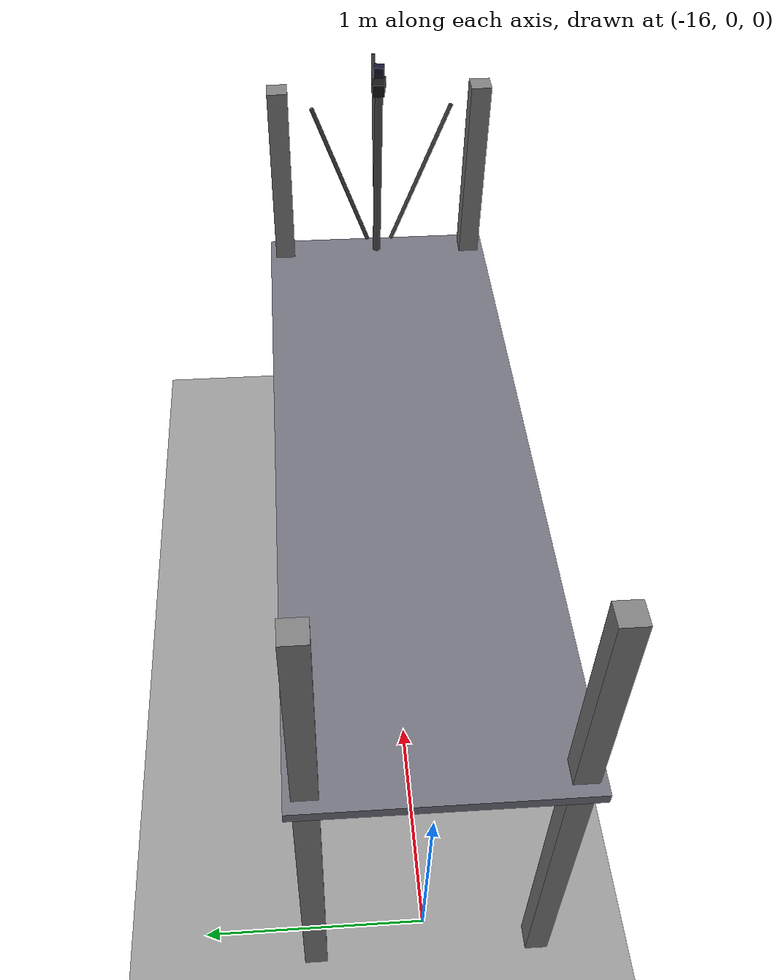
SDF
<sdf version="1.7">
 <world name="rmuc2026_radar_sim">
  <plugin filename="libignition-gazebo-physics-system.so" name="ignition::gazebo::systems::Physics"/>
  <plugin filename="libignition-gazebo-scene-broadcaster-system.so" name="ignition::gazebo::systems::SceneBroadcaster"/>
  <plugin filename="libignition-gazebo-user-commands-system.so" name="ignition::gazebo::systems::UserCommands"/>
  <plugin filename="libignition-gazebo-sensors-system.so" name="ignition::gazebo::systems::Sensors">
   <render_engine>ogre2</render_engine>
  </plugin>
  <plugin filename="libignition-gazebo-imu-system.so" name="ignition::gazebo::systems::Imu"/>
  <plugin filename="libignition-gazebo-contact-system.so" name="ignition::gazebo::systems::Contact"/>
  <physics name="default_physics" type="ode">
   <max_step_size>0.004</max_step_size>
   <real_time_factor>1.0</real_time_factor>
   <real_time_update_rate>250</real_time_update_rate>
  </physics>
  <scene><ambient>0.6 0.6 0.6 1</ambient><background>0.7 0.8 0.95 1</background><shadows>true</shadows></scene>
  <light type="directional" name="sun">
   <pose>0 0 30 0 0 0</pose>
   <diffuse>0.9 0.9 0.9 1</diffuse>
   <specular>0.3 0.3 0.3 1</specular>
   <attenuation>
    <range>1000</range>
    <constant>0.3</constant>
    <linear>0.005</linear>
    <quadratic>0.0001</quadratic>
   </attenuation>
   <direction>-0.5 0.3 -0.9</direction>
  </light>
  <light type="directional" name="fill_light">
   <cast_shadows>false</cast_shadows>
   <pose>0 0 25 0 0 0</pose>
   <diffuse>0.4 0.4 0.4 1</diffuse>
   <specular>0.1 0.1 0.1 1</specular>
   <direction>0.5 -0.3 -0.7</direction>
  </light>
  <model name="ground_plane">
   <static>true</static>
   <link name="link">
    <collision name="collision"><geometry><plane><normal>0 0 1</normal></plane></geometry></collision>
    <visual name="visual">
     <geometry><plane><normal>0 0 1</normal><size>40 25</size></plane></geometry>
     <material><ambient>0.55 0.55 0.55 1</ambient><diffuse>0.6 0.6 0.6 1</diffuse></material>
    </visual>
   </link>
  </model>
  <include><uri>model://radar_station</uri><pose>-14.5 0 0 0 0 0</pose><name>radar_station_blue</name></include>
 </world>
</sdf>

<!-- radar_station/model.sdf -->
<sdf version="1.7">
  <model name="radar_station">
    <static>true</static>

    <!-- ===== 雷达基座平台 (3.4m x 1.16m, 高2.5m) ===== -->
    <link name="base_link">
      <pose>0 0 0 0 0 0</pose>
    </link>

    <!-- 支撑柱 (4根) -->
    <link name="pillar_fl">
      <pose>1.6 0.5 1.25 0 0 0</pose>
      <visual name="v"><geometry><box><size>0.1 0.1 2.5</size></box></geometry>
        <material><ambient>0.4 0.4 0.4 1</ambient><diffuse>0.5 0.5 0.5 1</diffuse></material></visual>
      <collision name="c"><geometry><box><size>0.1 0.1 2.5</size></box></geometry></collision>
    </link>
    <joint name="j_pfl" type="fixed"><parent>base_link</parent><child>pillar_fl</child></joint>

    <link name="pillar_fr">
      <pose>1.6 -0.5 1.25 0 0 0</pose>
      <visual name="v"><geometry><box><size>0.1 0.1 2.5</size></box></geometry>
        <material><ambient>0.4 0.4 0.4 1</ambient><diffuse>0.5 0.5 0.5 1</diffuse></material></visual>
      <collision name="c"><geometry><box><size>0.1 0.1 2.5</size></box></geometry></collision>
    </link>
    <joint name="j_pfr" type="fixed"><parent>base_link</parent><child>pillar_fr</child></joint>

    <link name="pillar_bl">
      <pose>-1.6 0.5 1.25 0 0 0</pose>
      <visual name="v"><geometry><box><size>0.1 0.1 2.5</size></box></geometry>
        <material><ambient>0.4 0.4 0.4 1</ambient><diffuse>0.5 0.5 0.5 1</diffuse></material></visual>
      <collision name="c"><geometry><box><size>0.1 0.1 2.5</size></box></geometry></collision>
    </link>
    <joint name="j_pbl" type="fixed"><parent>base_link</parent><child>pillar_bl</child></joint>

    <link name="pillar_br">
      <pose>-1.6 -0.5 1.25 0 0 0</pose>
      <visual name="v"><geometry><box><size>0.1 0.1 2.5</size></box></geometry>
        <material><ambient>0.4 0.4 0.4 1</ambient><diffuse>0.5 0.5 0.5 1</diffuse></material></visual>
      <collision name="c"><geometry><box><size>0.1 0.1 2.5</size></box></geometry></collision>
    </link>
    <joint name="j_pbr" type="fixed"><parent>base_link</parent><child>pillar_br</child></joint>

    <!-- 平台面板 3.4m x 1.16m x 0.05m, 高度1.5m -->
    <link name="platform">
      <pose>0 0 1.525 0 0 0</pose>
      <visual name="v">
        <geometry><box><size>3.4 1.16 0.05</size></box></geometry>
        <material><ambient>0.35 0.35 0.4 1</ambient><diffuse>0.45 0.45 0.5 1</diffuse></material>
      </visual>
      <collision name="c"><geometry><box><size>3.4 1.16 0.05</size></box></geometry></collision>
    </link>
    <joint name="j_platform" type="fixed"><parent>base_link</parent><child>platform</child></joint>

    <!-- 围栏已按用户请求移除：不再在基座上生成挡视线的围栏 -->

    <!-- ===== 三脚架 (移动到平台前边缘) ===== -->
    <!-- 三脚架中心高约1.0m, 平台顶面在1.55m, 三脚架顶在2.5m -->
    <!-- 移动到平台前边缘(X=1.6)，避免平台遮挡 -->
    <link name="tripod_center">
      <pose>1.6 0 2.0 0 0 0</pose>
      <visual name="v">
        <geometry><cylinder><radius>0.02</radius><length>1.0</length></cylinder></geometry>
        <material><ambient>0.2 0.2 0.2 1</ambient><diffuse>0.3 0.3 0.3 1</diffuse></material>
      </visual>
    </link>
    <joint name="j_tripod" type="fixed"><parent>platform</parent><child>tripod_center</child></joint>

    <link name="tripod_leg1">
      <pose>1.85 0 2.1 0 0.35 0</pose>
      <visual name="v"><geometry><cylinder><radius>0.01</radius><length>0.8</length></cylinder></geometry>
        <material><ambient>0.2 0.2 0.2 1</ambient><diffuse>0.3 0.3 0.3 1</diffuse></material></visual>
    </link>
    <joint name="j_tl1" type="fixed"><parent>tripod_center</parent><child>tripod_leg1</child></joint>

    <link name="tripod_leg2">
      <pose>1.45 0.2 2.1 -0.35 0 0</pose>
      <visual name="v"><geometry><cylinder><radius>0.01</radius><length>0.8</length></cylinder></geometry>
        <material><ambient>0.2 0.2 0.2 1</ambient><diffuse>0.3 0.3 0.3 1</diffuse></material></visual>
    </link>
    <joint name="j_tl2" type="fixed"><parent>tripod_center</parent><child>tripod_leg2</child></joint>

    <link name="tripod_leg3">
      <pose>1.45 -0.2 2.1 0.35 0 0</pose>
      <visual name="v"><geometry><cylinder><radius>0.01</radius><length>0.8</length></cylinder></geometry>
        <material><ambient>0.2 0.2 0.2 1</ambient><diffuse>0.3 0.3 0.3 1</diffuse></material></visual>
    </link>
    <joint name="j_tl3" type="fixed"><parent>tripod_center</parent><child>tripod_leg3</child></joint>

    <!-- Livox HAP 激光雷达 (三脚架顶部)               -->
    <!-- 高度: 2.5m (距离地面)                        -->
    <!-- pitch=0rad(0°) 水平放置                      -->
    <!-- yaw=-0.262rad(15°) 向右旋转                   -->
    <!-- 位置移动到平台前边缘，避免遮挡                 -->
    <link name="livox_hap">
      <pose>1.6 0 2.5 0 0 -0.150</pose>
      <visual name="lidar_body">
        <geometry><box><size>0.1 0.06 0.06</size></box></geometry>
        <material><ambient>0.05 0.05 0.05 1</ambient><diffuse>0.1 0.1 0.1 1</diffuse></material>
      </visual>
      <collision name="c"><geometry><box><size>0.1 0.06 0.06</size></box></geometry></collision>

      <sensor name="livox_hap_lidar" type="gpu_lidar">
        <pose>0 0 0 0 0 0</pose>
        <always_on>true</always_on>
        <update_rate>10</update_rate>
        <topic>livox/lidar</topic>
        <visualize>true</visualize>
        <lidar>
          <scan>
            <horizontal>
              <samples>600</samples>
              <resolution>1</resolution>
              <min_angle>-1.0472</min_angle>
              <max_angle>1.0472</max_angle>
            </horizontal>
            <vertical>
              <!-- 增加垂直扫描角度从25°到45°，以获得更好的赛场覆盖 -->
              <samples>64</samples>
              <resolution>1</resolution>
              <min_angle>-0.3927</min_angle>
              <max_angle>0.3927</max_angle>
            </vertical>
          </scan>
          <range>
            <min>0.2</min>
            <max>150.0</max>
            <resolution>0.002</resolution>
          </range>
          <noise>
            <type>gaussian</type>
            <mean>0.0</mean>
            <stddev>0.01</stddev>
          </noise>
        </lidar>
      </sensor>
    </link>
    <joint name="j_lidar" type="fixed"><parent>tripod_center</parent><child>livox_hap</child></joint>

    <!-- 工业相机 (固定在激光雷达正上方, +0.08m)        -->
    <!-- 与激光雷达同方向，水平放置                     -->
    <!-- yaw=0.262rad(15°) 向右旋转                   -->
    <!-- FOV加大到69°以覆盖赛场宽度                     -->
    <!-- 跟随雷达移动到平台前边缘                       -->
    <link name="camera_link">
      <pose>1.6 0 2.58 0 0 -0.150</pose>
      <visual name="camera_body">
        <geometry><box><size>0.05 0.05 0.05</size></box></geometry>
        <material><ambient>0.05 0.05 0.12 1</ambient><diffuse>0.1 0.1 0.2 1</diffuse></material>
      </visual>
      <collision name="c"><geometry><box><size>0.05 0.05 0.05</size></box></geometry></collision>

      <sensor name="radar_camera" type="camera">
        <pose>0 0 0 0 0 0</pose>
        <always_on>true</always_on>
        <update_rate>30</update_rate>
        <topic>radar/camera</topic>
        <visualize>true</visualize>
        <camera>
          <horizontal_fov>1.2</horizontal_fov>
          <image>
            <width>1280</width>
            <height>1024</height>
            <format>R8G8B8</format>
          </image>
          <clip>
            <near>0.1</near>
            <far>100</far>
          </clip>
          <noise>
            <type>gaussian</type>
            <mean>0.0</mean>
            <stddev>0.007</stddev>
          </noise>
        </camera>
      </sensor>
    </link>
    <joint name="j_camera" type="fixed"><parent>livox_hap</parent><child>camera_link</child></joint>

  </model>
</sdf>
